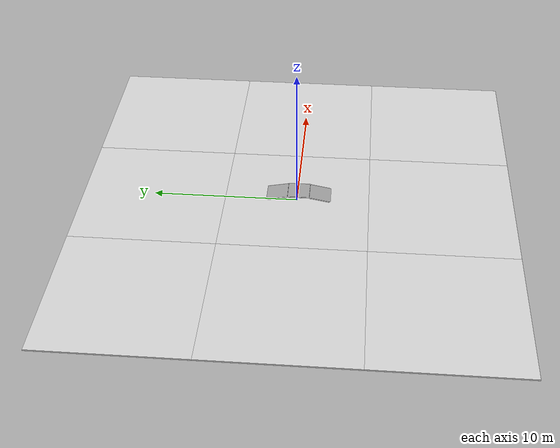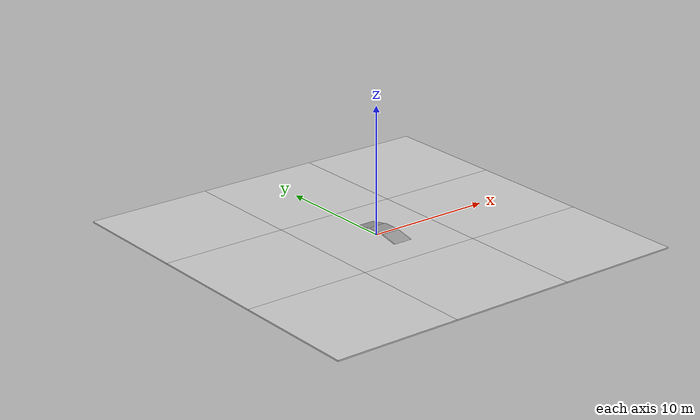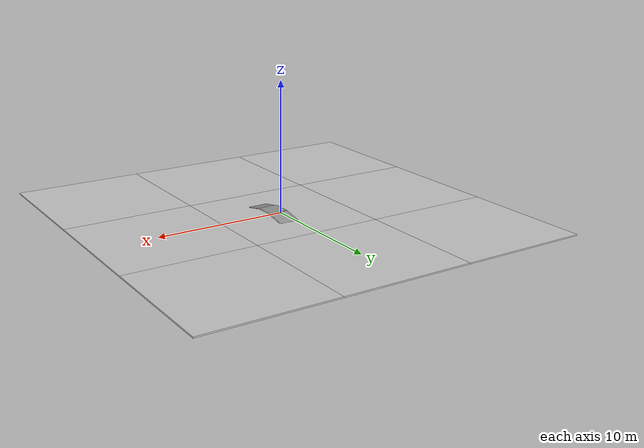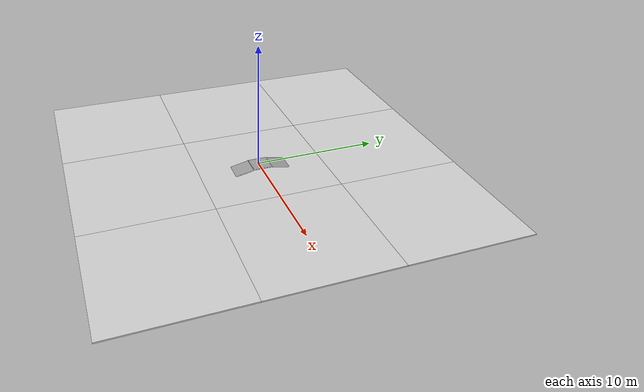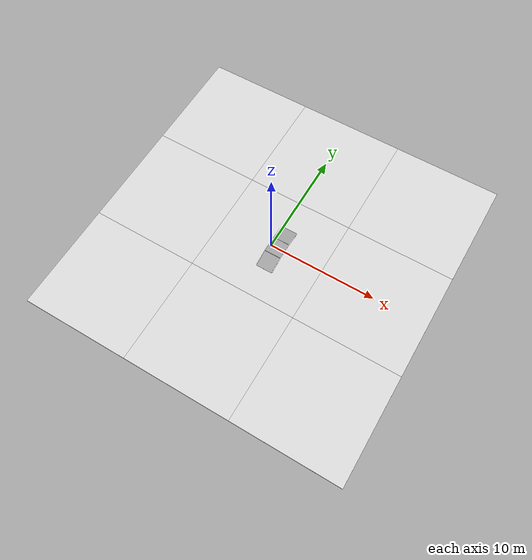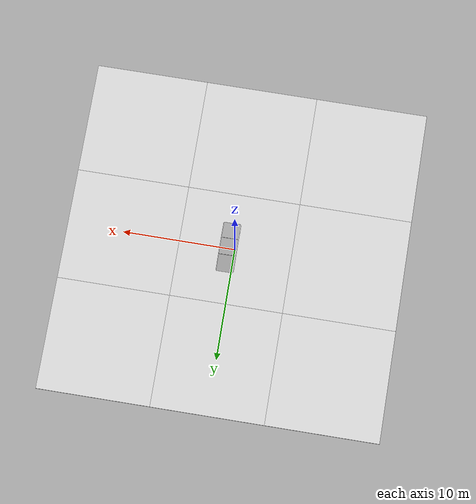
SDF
<?xml version="1.0" ?>
<sdf version="1.9">
  <world name="ramp">

    <!-- System plugins -->
    <plugin name='ignition::gazebo::systems::Physics'           filename='ignition-gazebo-physics-system'/>
    <plugin name='ignition::gazebo::systems::UserCommands'      filename='ignition-gazebo-user-commands-system'/>
    <plugin name='ignition::gazebo::systems::SceneBroadcaster'  filename='ignition-gazebo-scene-broadcaster-system'/>
    <plugin name="ignition::gazebo::systems::Contact"           filename="libignition-gazebo-contact-system.so"/>
    <plugin name="ignition::gazebo::systems::Sensors"           filename="ignition-gazebo-sensors-system"/>
    <plugin name="ignition::gazebo::systems::Imu"               filename="ignition-gazebo-imu-system"/>
    <plugin name="ignition::gazebo::systems::NavSat"            filename="ignition-gazebo-navsat-system" />

    <physics type="ode">
      <max_step_size>0.001</max_step_size>
      <real_time_update_rate>1000</real_time_update_rate>
    </physics>

    <scene>
      <ambient>0.1 0.1 0.1 0.1</ambient>
      <background>0.8 0.8 0.8 1.0</background>
      <grid>true</grid>
    </scene>

    <light type="directional" name="sun">
      <cast_shadows>true</cast_shadows>
      <pose>0 0 10 0 0 0</pose>
      <diffuse>1 1 1 1</diffuse>
      <specular>0.2 0.2 0.2 1</specular>
      <direction>-0.5 0.1 -0.9</direction>
    </light>

    <!-- Course (centered) and bounding tiles so no cliffs-->
    <include> <uri>model://floor</uri> <pose>0 0 0 0 0 0</pose> </include>
    <include> <uri>model://floor_boundary</uri> <name>n</name> <pose>10 0 0 0 0 0</pose>  </include>
    <include> <uri>model://floor_boundary</uri> <name>s</name> <pose>-10 0 0 0 0 0</pose>  </include>
    <include> <uri>model://floor_boundary</uri> <name>e</name> <pose>0 10 0 0 0 0</pose> </include>
    <include> <uri>model://floor_boundary</uri> <name>w</name> <pose>0 -10 0 0 0 0</pose> </include>
    <include> <uri>model://floor_boundary</uri> <name>ne</name> <pose>10 10 0 0 0 0</pose> </include>
    <include> <uri>model://floor_boundary</uri> <name>nw</name> <pose>10 -10 0 0 0 0</pose> </include>
    <include> <uri>model://floor_boundary</uri> <name>se</name> <pose>-10 10 0 0 0 0</pose> </include>
    <include> <uri>model://floor_boundary</uri> <name>sw</name> <pose>-10 -10 0 0 0 0</pose> </include>

    <gui fullscreen='0'>
      <camera name='user_camera'>
        <pose>-1.8 14.4 8.6 0.0 0.545 -1.65</pose>
        <view_controller>orbit</view_controller>
      </camera>
    </gui>

    <include>
      <uri>model://ramp</uri>
      <name>ramp_1</name>
      <pose>0.61 -0.1 0.05 -0 -0 1.575</pose>
    </include>

    <include>
      <uri>model://line_boundary</uri>
      <name>line_boundary_1</name>
      <pose>-0.556677 2.27014 0 0 0 -1.00249</pose>
    </include>
    <include>
      <uri>model://line_boundary</uri>
      <name>line_boundary_2</name>
      <pose>-0.767901 4.56848 0 0 -0 1.62966</pose>
    </include>
    <include>
      <uri>model://line_boundary</uri>
      <name>line_boundary_3</name>
      <pose>-0.692546 3.30252 0 0 0 -1.56179</pose>
    </include>
    <include>
      <uri>model://line_boundary</uri>
      <name>line_boundary_4</name>
      <pose>2.12347 4.26732 0 0 -0 1.56252</pose>
    </include>
    <include>
      <uri>model://line_boundary</uri>
      <name>line_boundary_5</name>
      <pose>2.15493 3.09202 0 0 -0 1.5653</pose>
    </include>
    <include>
      <uri>model://line_boundary</uri>
      <name>line_boundary_6</name>
      <pose>2.22103 -3.068 0 0 -0 1.57989</pose>
    </include>
    <include>
      <uri>model://line_boundary</uri>
      <name>line_boundary_7</name>
      <pose>2.20748 -4.30352 0 0 -0 1.5622</pose>
    </include>
    <include>
      <uri>model://line_boundary</uri>
      <name>line_boundary_8</name>
      <pose>-0.787855 -3.09813 0 0 -0 1.57337</pose>
    </include>
    <include>
      <uri>model://line_boundary</uri>
      <name>line_boundary_9</name>
      <pose>-0.787666 -4.26945 0 0 -0 1.5876</pose>
    </include>
    <include>
      <uri>model://line_boundary</uri>
      <name>line_boundary_10</name>
      <pose>-0.558838 -2.04749 0 0 -0 0.868178</pose>
    </include>
    <include>
      <uri>model://line_boundary</uri>
      <name>line_boundary_11</name>
      <pose>1.83199 -1.92375 0 0 0 -0.834673</pose>
    </include>
    <include>
      <uri>model://line_boundary</uri>
      <name>line_boundary_12</name>
      <pose>1.88926 2.0135 0 0 -0 0.823667</pose>
    </include>

  </world>
</sdf>

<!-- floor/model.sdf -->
<sdf version="1.9">
  <model name="floor">
    <static>true</static>
    <link name="course_floor">
      <collision name="floor_collision">
        <geometry>
          <box>
            <size>10 10 0.1</size>
          </box>
        </geometry>
      </collision>

      <visual name="visual">
        <geometry>
          <box>
            <size>10 10 0.1</size>
          </box>
        </geometry>

        <material>
          <ambient>0.1 0.1 0.1 1</ambient>
          <diffuse>0.8 0.8 0.8 1</diffuse>
          <specular>0.1 0.1 0.1 1</specular>

          <pbr>
            <metal>
              <albedo_map>materials/textures/floor_picture.png</albedo_map>
              <roughness>0.9</roughness>
              <metalness>0.0</metalness>
            </metal>
          </pbr>
        </material>

      </visual>
    </link>
  </model>
</sdf>

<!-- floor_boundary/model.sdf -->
<sdf version="1.9">
  <model name="floor_boundary">
    <static>true</static>
    <link name="course_floor">
      <collision name="floor_collision">
        <geometry>
          <box>
            <size>10 10 0.095</size>
          </box>
        </geometry>
      </collision>

      <visual name="visual">
        <geometry>
          <box>
            <size>10 10 0.1</size>
          </box>
        </geometry>

        <material>
          <ambient>0.1 0.1 0.1 1</ambient>
          <diffuse>0.8 0.8 0.8 1</diffuse>
          <specular>0.1 0.1 0.1 1</specular>

          <pbr>
            <metal>
              <albedo_map>materials/textures/blank_floor.png</albedo_map>
              <roughness>0.9</roughness>
              <metalness>0.0</metalness>
            </metal>
          </pbr>
        </material>

      </visual>
    </link>
  </model>
</sdf>

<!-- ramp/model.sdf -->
<sdf version="1.6">
  <model name="ramp">
    <static>true</static>

    <!-- Up slope -->
    <link name="up_slope">
      <pose>-1.5 0 0.125 0 -0.1963 0</pose>
      <collision name="ramp_collision">
        <geometry><box><size>1.5 1.5 0.05</size></box></geometry>
        <surface>
          <friction><ode><mu>1.0</mu><mu2>1.0</mu2></ode></friction>
        </surface>
      </collision>
      <visual name="visual">
        <geometry><box><size>1.5 1.5 0.05</size></box></geometry>
        <material>
          <ambient>0.5 0.5 0.5 1</ambient>
          <diffuse>0.6 0.6 0.6 1</diffuse>
        </material>
      </visual>
    </link>

    <!-- Up slope lane lines -->
    <link name="up_slope_lane_left">
      <pose>-1.5 0.75 0.125 0 -0.1963 0</pose>
      <visual name="visual">
        <geometry><box><size>1.5 0.1 0.01</size></box></geometry>
        <material>
          <ambient>1 1 1 1</ambient>
          <diffuse>1 1 1 1</diffuse>
          <emissive>1 1 1 1</emissive>
        </material>
      </visual>
    </link>
    <link name="up_slope_lane_right">
      <pose>-1.5 -0.75 0.125 0 -0.1963 0</pose>
      <visual name="visual">
        <geometry><box><size>1.5 0.1 0.01</size></box></geometry>
        <material>
          <ambient>1 1 1 1</ambient>
          <diffuse>1 1 1 1</diffuse>
          <emissive>1 1 1 1</emissive>
        </material>
      </visual>
    </link>

    <!-- Flat top -->
    <link name="flat_top">
      <pose>0 0 0.3 0 0 0</pose>
      <collision name="ramp_collision">
        <geometry><box><size>1.5 1.5 0.05</size></box></geometry>
        <surface>
          <friction><ode><mu>1.0</mu><mu2>1.0</mu2></ode></friction>
        </surface>
      </collision>
      <visual name="visual">
        <geometry><box><size>1.5 1.5 0.05</size></box></geometry>
        <material>
          <ambient>0.5 0.5 0.5 1</ambient>
          <diffuse>0.6 0.6 0.6 1</diffuse>
        </material>
      </visual>
    </link>

    <!-- Flat top lane lines -->
    <link name="flat_top_lane_left">
      <pose>0 0.75 0.3 0 0 0</pose>
      <visual name="visual">
        <geometry><box><size>1.5 0.1 0.01</size></box></geometry>
        <material>
          <ambient>1 1 1 1</ambient>
          <diffuse>1 1 1 1</diffuse>
          <emissive>1 1 1 1</emissive>
        </material>
      </visual>
    </link>
    <link name="flat_top_lane_right">
      <pose>0 -0.75 0.3 0 0 0</pose>
      <visual name="visual">
        <geometry><box><size>1.5 0.1 0.01</size></box></geometry>
        <material>
          <ambient>1 1 1 1</ambient>
          <diffuse>1 1 1 1</diffuse>
          <emissive>1 1 1 1</emissive>
        </material>
      </visual>
    </link>

    <!-- Down slope -->
    <link name="down_slope">
      <pose>1.5 0 0.125 0 0.1963 0</pose>
      <collision name="ramp_collision">
        <geometry><box><size>1.5 1.5 0.05</size></box></geometry>
        <surface>
          <friction><ode><mu>1.0</mu><mu2>1.0</mu2></ode></friction>
        </surface>
      </collision>
      <visual name="visual">
        <geometry><box><size>1.5 1.5 0.05</size></box></geometry>
        <material>
          <ambient>0.5 0.5 0.5 1</ambient>
          <diffuse>0.6 0.6 0.6 1</diffuse>
        </material>
      </visual>
    </link>

    <!-- Down slope lane lines -->
    <link name="down_slope_lane_left">
      <pose>1.5 0.75 0.125 0 0.1963 0</pose>
      <visual name="visual">
        <geometry><box><size>1.5 0.1 0.01</size></box></geometry>
        <material>
          <ambient>1 1 1 1</ambient>
          <diffuse>1 1 1 1</diffuse>
          <emissive>1 1 1 1</emissive>
        </material>
      </visual>
    </link>
    <link name="down_slope_lane_right">
      <pose>1.5 -0.75 0.125 0 0.1963 0</pose>
      <visual name="visual">
        <geometry><box><size>1.5 0.1 0.01</size></box></geometry>
        <material>
          <ambient>1 1 1 1</ambient>
          <diffuse>1 1 1 1</diffuse>
          <emissive>1 1 1 1</emissive>
        </material>
      </visual>
    </link>

  </model>
</sdf>

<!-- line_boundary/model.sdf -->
<sdf version="1.8">
  <model name="line_boundary">

    <static>true</static>

    <link name="white_line_boundary">
      <collision name="line_collision">
        <pose>0 0 0.05 0 0 0</pose>
        <geometry>
          <box><size>1 0.1 0.1</size></box>
        </geometry>
      </collision>
    </link>

  </model>
</sdf>
